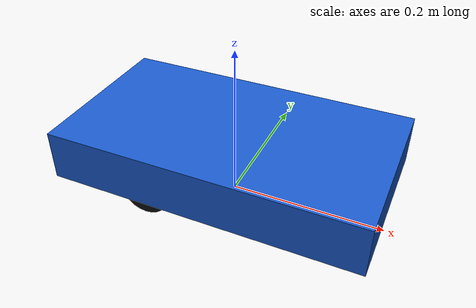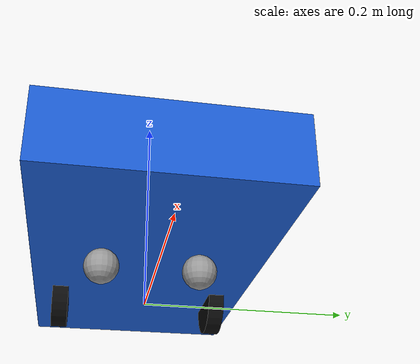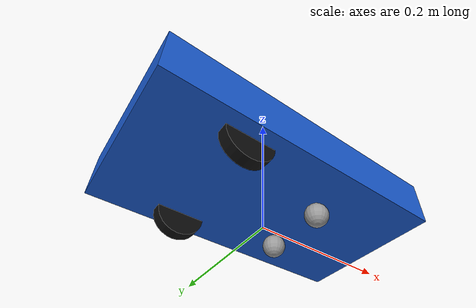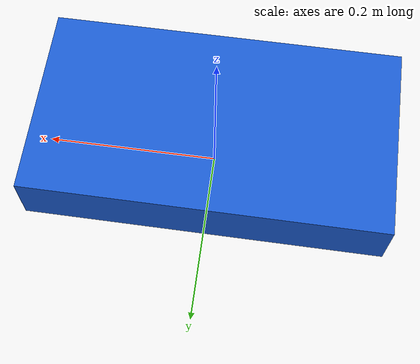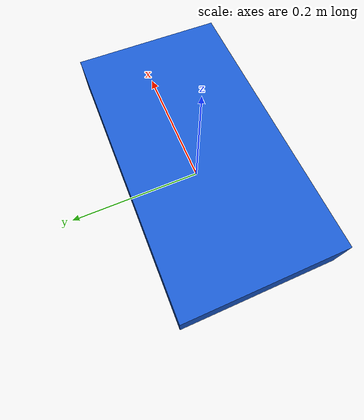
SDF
<sdf version="1.8">
  <model name="vgr_diff_drive">
    <pose>0 0 0 0 0 0</pose>
    <link name="chassis">
      <pose>0 0 0.065 0 0 0</pose>
      <inertial>
        <mass>1.5</mass>
        <inertia>
          <ixx>0.006578125</ixx>
          <ixy>0</ixy>
          <ixz>0</ixz>
          <iyy>0.020528125</iyy>
          <iyz>0</iyz>
          <izz>0.02605</izz>
        </inertia>
      </inertial>
      <collision name="chassis_collision">
        <geometry>
          <box>
            <size>0.4 0.22 0.065</size>
          </box>
        </geometry>
      </collision>
      <visual name="chassis_visual">
        <geometry>
          <box>
            <size>0.4 0.22 0.065</size>
          </box>
        </geometry>
        <material>
          <ambient>0.1 0.35 0.8 1</ambient>
          <diffuse>0.1 0.35 0.8 1</diffuse>
        </material>
      </visual>
      <sensor name="front_camera" type="camera">
        <pose>0.2 0 0.17 0 0 0</pose>
        <topic>/camera/image_raw</topic>
        <update_rate>15</update_rate>
        <always_on>1</always_on>
        <visualize>0</visualize>
        <camera>
          <horizontal_fov>1.2</horizontal_fov>
          <image>
            <width>640</width>
            <height>480</height>
            <format>R8G8B8</format>
          </image>
          <clip>
            <near>0.02</near>
            <far>10</far>
          </clip>
        </camera>
      </sensor>
    </link>
    <link name="left_wheel">
      <pose>-0.0825 0.0825 0.0325 0 0 0</pose>
      <inertial>
        <mass>0.125</mass>
        <inertia>
          <ixx>3.57584635417e-05</ixx>
          <ixy>0</ixy>
          <ixz>0</ixz>
          <iyy>6.6015625e-05</iyy>
          <iyz>0</iyz>
          <izz>3.57584635417e-05</izz>
        </inertia>
      </inertial>
      <collision name="left_wheel_collision">
        <pose>0 0 0 1.57079632679 0 0</pose>
        <geometry>
          <cylinder>
            <radius>0.0325</radius>
            <length>0.01625</length>
          </cylinder>
        </geometry>
      </collision>
      <visual name="left_wheel_visual">
        <pose>0 0 0 1.57079632679 0 0</pose>
        <geometry>
          <cylinder>
            <radius>0.0325</radius>
            <length>0.01625</length>
          </cylinder>
        </geometry>
        <material>
          <ambient>0.05 0.05 0.05 1</ambient>
          <diffuse>0.05 0.05 0.05 1</diffuse>
        </material>
      </visual>
    </link>
    <link name="right_wheel">
      <pose>-0.0825 -0.0825 0.0325 0 0 0</pose>
      <inertial>
        <mass>0.125</mass>
        <inertia>
          <ixx>3.57584635417e-05</ixx>
          <ixy>0</ixy>
          <ixz>0</ixz>
          <iyy>6.6015625e-05</iyy>
          <iyz>0</iyz>
          <izz>3.57584635417e-05</izz>
        </inertia>
      </inertial>
      <collision name="right_wheel_collision">
        <pose>0 0 0 1.57079632679 0 0</pose>
        <geometry>
          <cylinder>
            <radius>0.0325</radius>
            <length>0.01625</length>
          </cylinder>
        </geometry>
      </collision>
      <visual name="right_wheel_visual">
        <pose>0 0 0 1.57079632679 0 0</pose>
        <geometry>
          <cylinder>
            <radius>0.0325</radius>
            <length>0.01625</length>
          </cylinder>
        </geometry>
        <material>
          <ambient>0.05 0.05 0.05 1</ambient>
          <diffuse>0.05 0.05 0.05 1</diffuse>
        </material>
      </visual>
    </link>
    <link name="front_caster_left">
      <pose>0.0525 0.045 0.01625 0 0 0</pose>
      <inertial>
        <mass>0.025</mass>
        <inertia>
          <ixx>2.640625e-06</ixx>
          <ixy>0</ixy>
          <ixz>0</ixz>
          <iyy>2.640625e-06</iyy>
          <iyz>0</iyz>
          <izz>2.640625e-06</izz>
        </inertia>
      </inertial>
      <collision name="front_caster_left_collision">
        <geometry>
          <sphere>
            <radius>0.01625</radius>
          </sphere>
        </geometry>
        <surface>
          <friction>
            <ode>
              <mu>0.001</mu>
              <mu2>0.001</mu2>
            </ode>
          </friction>
        </surface>
      </collision>
      <visual name="front_caster_left_visual">
        <geometry>
          <sphere>
            <radius>0.01625</radius>
          </sphere>
        </geometry>
        <material>
          <ambient>0.6 0.6 0.6 1</ambient>
          <diffuse>0.6 0.6 0.6 1</diffuse>
        </material>
      </visual>
    </link>
    <link name="front_caster_right">
      <pose>0.0525 -0.045 0.01625 0 0 0</pose>
      <inertial>
        <mass>0.025</mass>
        <inertia>
          <ixx>2.640625e-06</ixx>
          <ixy>0</ixy>
          <ixz>0</ixz>
          <iyy>2.640625e-06</iyy>
          <iyz>0</iyz>
          <izz>2.640625e-06</izz>
        </inertia>
      </inertial>
      <collision name="front_caster_right_collision">
        <geometry>
          <sphere>
            <radius>0.01625</radius>
          </sphere>
        </geometry>
        <surface>
          <friction>
            <ode>
              <mu>0.001</mu>
              <mu2>0.001</mu2>
            </ode>
          </friction>
        </surface>
      </collision>
      <visual name="front_caster_right_visual">
        <geometry>
          <sphere>
            <radius>0.01625</radius>
          </sphere>
        </geometry>
        <material>
          <ambient>0.6 0.6 0.6 1</ambient>
          <diffuse>0.6 0.6 0.6 1</diffuse>
        </material>
      </visual>
    </link>
    <joint name="left_wheel_joint" type="revolute">
      <parent>chassis</parent>
      <child>left_wheel</child>
      <axis>
        <xyz>0 1 0</xyz>
      </axis>
    </joint>
    <joint name="right_wheel_joint" type="revolute">
      <parent>chassis</parent>
      <child>right_wheel</child>
      <axis>
        <xyz>0 1 0</xyz>
      </axis>
    </joint>
    <joint name="front_caster_left_joint" type="fixed">
      <parent>chassis</parent>
      <child>front_caster_left</child>
    </joint>
    <joint name="front_caster_right_joint" type="fixed">
      <parent>chassis</parent>
      <child>front_caster_right</child>
    </joint>
    <plugin filename="libignition-gazebo-diff-drive-system.so" name="ignition::gazebo::systems::DiffDrive">
      <left_joint>left_wheel_joint</left_joint>
      <right_joint>right_wheel_joint</right_joint>
      <wheel_separation>0.165</wheel_separation>
      <wheel_radius>0.0325</wheel_radius>
      <max_linear_velocity>0.24504422698</max_linear_velocity>
      <topic>/cmd_vel_safe</topic>
      <odom_topic>/odom</odom_topic>
      <tf_topic>/tf</tf_topic>
    </plugin>
    <plugin filename="libignition-gazebo-odometry-publisher-system.so" name="ignition::gazebo::systems::OdometryPublisher">
      <odom_topic>/sim/true_pose</odom_topic>
      <odom_frame>world</odom_frame>
      <robot_base_frame>chassis</robot_base_frame>
      <odom_publish_frequency>50</odom_publish_frequency>
    </plugin>
    <plugin filename="libignition-gazebo-joint-state-publisher-system.so" name="ignition::gazebo::systems::JointStatePublisher">
      <joint_name>left_wheel_joint</joint_name>
      <joint_name>right_wheel_joint</joint_name>
    </plugin>
  </model>
</sdf>
